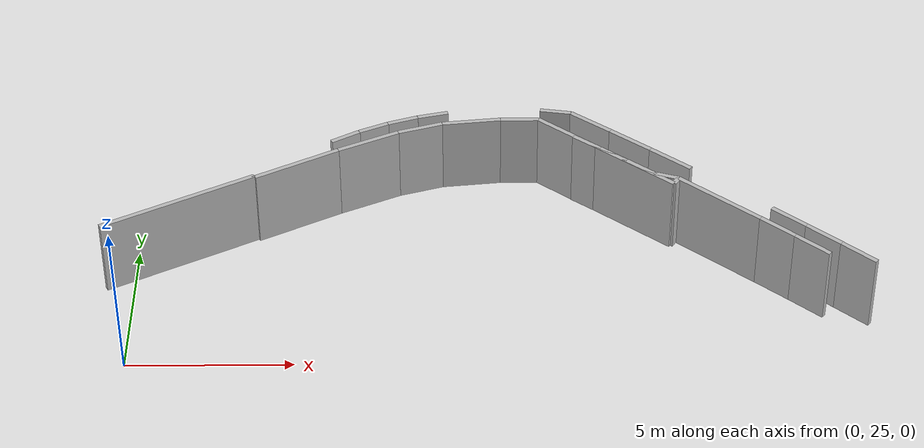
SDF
<sdf version="1.6">
 <model name="sps_0605">
  <static>1</static>
  <allow_auto_disable>0</allow_auto_disable>
  <link name="Wall118">
   <collision name="collision"><geometry><box><size>5.04032 0.15 2.5</size></box></geometry></collision>
   <visual name="visual">
    <geometry><box><size>5.04032 0.15 2.5</size></box></geometry>
    <transparency>0.0</transparency>
   </visual>
   <pose>1.36855 29.5763 1.25 0 -0 0.481271</pose>
  </link>
  <link name="Wall844">
   <collision name="collision"><geometry><box><size>2.80838 0.15 2.5</size></box></geometry></collision>
   <visual name="visual">
    <geometry><box><size>2.80838 0.15 2.5</size></box></geometry>
    <transparency>0.0</transparency>
   </visual>
   <pose>4.87875 31.3329 1.25 0 -0 0.48126</pose>
  </link>
  <link name="Wall845">
   <collision name="collision"><geometry><box><size>2.02602 0.15 2.5</size></box></geometry></collision>
   <visual name="visual">
    <geometry><box><size>2.02602 0.15 2.5</size></box></geometry>
    <transparency>0.0</transparency>
   </visual>
   <pose>7.04064 32.4129 1.25 0 -0 0.438411</pose>
  </link>
  <link name="Wall1854">
   <collision name="collision"><geometry><box><size>0.0678181 0.15 2.5</size></box></geometry></collision>
   <visual name="visual">
    <geometry><box><size>0.0678181 0.15 2.5</size></box></geometry>
    <transparency>0.0</transparency>
   </visual>
   <pose>3.61825 30.7129 1.25 0 0 -1.08582</pose>
  </link>
  <link name="Wall1857">
   <collision name="collision"><geometry><box><size>0.789944 0.15 2.5</size></box></geometry></collision>
   <visual name="visual">
    <geometry><box><size>0.789944 0.15 2.5</size></box></geometry>
    <transparency>0.0</transparency>
   </visual>
   <pose>16.1693 30.6343 1.25 0 -0 2.82869</pose>
  </link>
  <link name="Wall7032">
   <collision name="collision"><geometry><box><size>1.00283 0.15 2.5</size></box></geometry></collision>
   <visual name="visual">
    <geometry><box><size>1.00283 0.15 2.5</size></box></geometry>
    <transparency>0.0</transparency>
   </visual>
   <pose>13.8108 32.2899 1.25 0 0 -0.649892</pose>
  </link>
  <link name="Wall7033">
   <collision name="collision"><geometry><box><size>1.00257 0.15 2.5</size></box></geometry></collision>
   <visual name="visual">
    <geometry><box><size>1.00257 0.15 2.5</size></box></geometry>
    <transparency>0.0</transparency>
   </visual>
   <pose>14.607 31.6803 1.25 0 0 -0.657065</pose>
  </link>
  <link name="Wall7034">
   <collision name="collision"><geometry><box><size>1.00284 0.15 2.5</size></box></geometry></collision>
   <visual name="visual">
    <geometry><box><size>1.00284 0.15 2.5</size></box></geometry>
    <transparency>0.0</transparency>
   </visual>
   <pose>15.3987 31.065 1.25 0 0 -0.664257</pose>
  </link>
  <link name="Wall7074">
   <collision name="collision"><geometry><box><size>1.25434 0.15 2.5</size></box></geometry></collision>
   <visual name="visual">
    <geometry><box><size>1.25434 0.15 2.5</size></box></geometry>
    <transparency>0.0</transparency>
   </visual>
   <pose>21.6212 27.0274 1.25 0 -0 2.42082</pose>
  </link>
  <link name="Wall7075">
   <collision name="collision"><geometry><box><size>1.25426 0.15 2.5</size></box></geometry></collision>
   <visual name="visual">
    <geometry><box><size>1.25426 0.15 2.5</size></box></geometry>
    <transparency>0.0</transparency>
   </visual>
   <pose>20.6752 27.8509 1.25 0 -0 2.42986</pose>
  </link>
  <link name="Wall7076">
   <collision name="collision"><geometry><box><size>1.25429 0.15 2.5</size></box></geometry></collision>
   <visual name="visual">
    <geometry><box><size>1.25429 0.15 2.5</size></box></geometry>
    <transparency>0.0</transparency>
   </visual>
   <pose>19.7219 28.666 1.25 0 -0 2.43852</pose>
  </link>
  <link name="Wall9644">
   <collision name="collision"><geometry><box><size>0.972121 0.15 2.5</size></box></geometry></collision>
   <visual name="visual">
    <geometry><box><size>0.972121 0.15 2.5</size></box></geometry>
    <transparency>0.0</transparency>
   </visual>
   <pose>6.32516 32.6458 1.25 0 -0 0.523772</pose>
  </link>
  <link name="Wall9645">
   <collision name="collision"><geometry><box><size>0.972038 0.15 2.5</size></box></geometry></collision>
   <visual name="visual">
    <geometry><box><size>0.972038 0.15 2.5</size></box></geometry>
    <transparency>0.0</transparency>
   </visual>
   <pose>7.18865 33.0897 1.25 0 -0 0.425926</pose>
  </link>
  <link name="Wall9646">
   <collision name="collision"><geometry><box><size>0.972112 0.15 2.5</size></box></geometry></collision>
   <visual name="visual">
    <geometry><box><size>0.972112 0.15 2.5</size></box></geometry>
    <transparency>0.0</transparency>
   </visual>
   <pose>8.09145 33.4469 1.25 0 -0 0.327608</pose>
  </link>
  <link name="Wall9647">
   <collision name="collision"><geometry><box><size>0.972272 0.15 2.5</size></box></geometry></collision>
   <visual name="visual">
    <geometry><box><size>0.972272 0.15 2.5</size></box></geometry>
    <transparency>0.0</transparency>
   </visual>
   <pose>9.02505 33.7139 1.25 0 -0 0.229509</pose>
  </link>
  <link name="Wall9651">
   <collision name="collision"><geometry><box><size>0.97186 0.15 2.5</size></box></geometry></collision>
   <visual name="visual">
    <geometry><box><size>0.97186 0.15 2.5</size></box></geometry>
    <transparency>0.0</transparency>
   </visual>
   <pose>12.8833 33.8533 1.25 0 0 -0.156641</pose>
  </link>
  <link name="Wall12933">
   <collision name="collision"><geometry><box><size>1.51113 0.15 2.5</size></box></geometry></collision>
   <visual name="visual">
    <geometry><box><size>1.51113 0.15 2.5</size></box></geometry>
    <transparency>0.0</transparency>
   </visual>
   <pose>13.9643 33.3196 1.25 0 0 -0.651046</pose>
  </link>
  <link name="Wall12934">
   <collision name="collision"><geometry><box><size>1.51091 0.15 2.5</size></box></geometry></collision>
   <visual name="visual">
    <geometry><box><size>1.51091 0.15 2.5</size></box></geometry>
    <transparency>0.0</transparency>
   </visual>
   <pose>15.1613 32.3975 1.25 0 0 -0.661713</pose>
  </link>
  <link name="Wall12935">
   <collision name="collision"><geometry><box><size>1.51112 0.15 2.5</size></box></geometry></collision>
   <visual name="visual">
    <geometry><box><size>1.51112 0.15 2.5</size></box></geometry>
    <transparency>0.0</transparency>
   </visual>
   <pose>16.3484 31.4627 1.25 0 0 -0.672401</pose>
  </link>
  <link name="Wall16785">
   <collision name="collision"><geometry><box><size>1.1946 0.15 2.5</size></box></geometry></collision>
   <visual name="visual">
    <geometry><box><size>1.1946 0.15 2.5</size></box></geometry>
    <transparency>0.0</transparency>
   </visual>
   <pose>11.7429 33.4654 1.25 0 -0 3.13607</pose>
  </link>
  <link name="Wall16786">
   <collision name="collision"><geometry><box><size>1.83602 0.15 2.5</size></box></geometry></collision>
   <visual name="visual">
    <geometry><box><size>1.83602 0.15 2.5</size></box></geometry>
    <transparency>0.0</transparency>
   </visual>
   <pose>10.2331 33.3692 1.25 0 0 -3.03297</pose>
  </link>
  <link name="Wall16787">
   <collision name="collision"><geometry><box><size>1.42788 0.15 2.5</size></box></geometry></collision>
   <visual name="visual">
    <geometry><box><size>1.42788 0.15 2.5</size></box></geometry>
    <transparency>0.0</transparency>
   </visual>
   <pose>8.63915 33.0563 1.25 0 0 -2.83808</pose>
  </link>
  <link name="Wall19342">
   <collision name="collision"><geometry><box><size>5.14421 0.15 2.5</size></box></geometry></collision>
   <visual name="visual">
    <geometry><box><size>5.14421 0.15 2.5</size></box></geometry>
    <transparency>0.0</transparency>
   </visual>
   <pose>14.3574 31.8662 1.25 0 0 -0.669343</pose>
  </link>
  <link name="Wall19343">
   <collision name="collision"><geometry><box><size>0.296437 0.15 2.5</size></box></geometry></collision>
   <visual name="visual">
    <geometry><box><size>0.296437 0.15 2.5</size></box></geometry>
    <transparency>0.0</transparency>
   </visual>
   <pose>16.4598 30.3915 1.25 0 -0 0.957608</pose>
  </link>
  <link name="Wall19344">
   <collision name="collision"><geometry><box><size>2.99977 0.15 2.5</size></box></geometry></collision>
   <visual name="visual">
    <geometry><box><size>2.99977 0.15 2.5</size></box></geometry>
    <transparency>0.0</transparency>
   </visual>
   <pose>17.7038 29.5604 1.25 0 0 -0.6879</pose>
  </link>
  <link name="Wall19385">
   <collision name="collision"><geometry><box><size>1.25212 0.15 2.5</size></box></geometry></collision>
   <visual name="visual">
    <geometry><box><size>1.25212 0.15 2.5</size></box></geometry>
    <transparency>0.0</transparency>
   </visual>
   <pose>20.2918 27.3895 1.25 0 -0 2.42968</pose>
  </link>
  <link name="Wall19386">
   <collision name="collision"><geometry><box><size>1.25216 0.15 2.5</size></box></geometry></collision>
   <visual name="visual">
    <geometry><box><size>1.25216 0.15 2.5</size></box></geometry>
    <transparency>0.0</transparency>
   </visual>
   <pose>19.3402 28.2033 1.25 0 -0 2.43849</pose>
  </link>
 </model>
</sdf>
